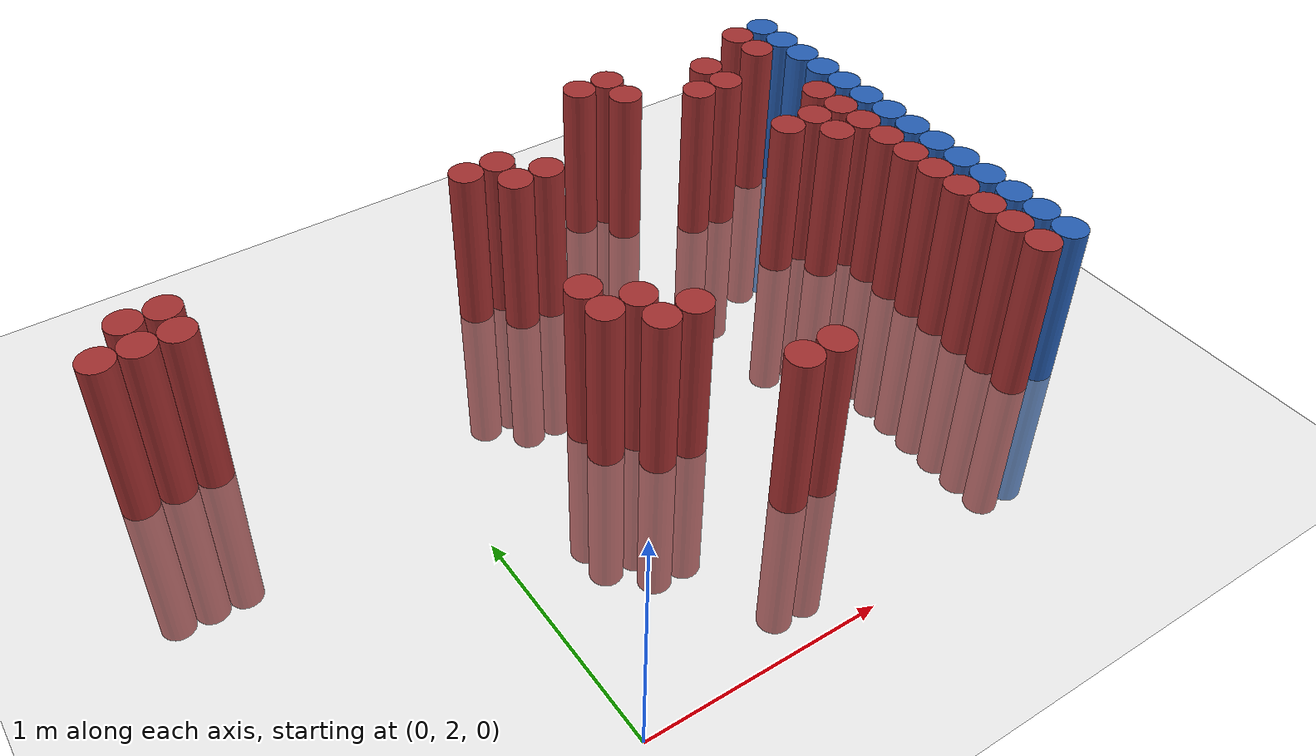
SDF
<sdf version="1.6">
 <world name="default">
  <model name="ground_plane">
   <static>1</static>
   <link name="link">
    <collision name="collision">
     <geometry><plane><normal>0 0 1</normal><size>100 100</size></plane></geometry>
     <surface><friction><ode><mu>100</mu><mu2>50</mu2></ode></friction></surface>
    </collision>
    <visual name="visual">
     <cast_shadows>0</cast_shadows>
     <geometry><plane><normal>0 0 1</normal><size>100 100</size></plane></geometry>
     <material>
      <script><uri>file://media/materials/scripts/gazebo.material</uri><name>Gazebo/Grey</name></script>
     </material>
    </visual>
   </link>
  </model>
  <model name="unit_cylinder_150">
   <static>1</static>
   <pose>-1.025000 3.925000 0.000000 0.000000 0.000000 0.000000</pose>
   <link name="link">
    <inertial>
     <mass>1</mass>
     <inertia><ixx>0.145833</ixx><ixy>0</ixy><ixz>0</ixz><iyy>0.145833</iyy><iyz>0</iyz><izz>0.125</izz></inertia>
    </inertial>
    <collision name="collision">
     <geometry><cylinder><radius>0.075000</radius><length>1.5</length></cylinder></geometry>
    </collision>
    <visual name="visual">
     <geometry><cylinder><radius>0.075000</radius><length>1.5</length></cylinder></geometry>
     <material>
      <ambient>0.648000 0.192000 0.192000 1</ambient>
      <diffuse>0.648000 0.192000 0.192000 1</diffuse>
     </material>
     <material>
      <script><name>Gazebo/Grey</name><uri>file://media/materials/scripts/gazebo.material</uri></script>
     </material>
    </visual>
   </link>
  </model>
  <model name="unit_cylinder_151">
   <static>1</static>
   <pose>-0.875000 3.925000 0.000000 0.000000 0.000000 0.000000</pose>
   <link name="link">
    <inertial>
     <mass>1</mass>
     <inertia><ixx>0.145833</ixx><ixy>0</ixy><ixz>0</ixz><iyy>0.145833</iyy><iyz>0</iyz><izz>0.125</izz></inertia>
    </inertial>
    <collision name="collision">
     <geometry><cylinder><radius>0.075000</radius><length>1.5</length></cylinder></geometry>
    </collision>
    <visual name="visual">
     <geometry><cylinder><radius>0.075000</radius><length>1.5</length></cylinder></geometry>
     <material>
      <ambient>0.648000 0.192000 0.192000 1</ambient>
      <diffuse>0.648000 0.192000 0.192000 1</diffuse>
     </material>
     <material>
      <script><name>Gazebo/Grey</name><uri>file://media/materials/scripts/gazebo.material</uri></script>
     </material>
    </visual>
   </link>
  </model>
  <model name="unit_cylinder_152">
   <static>1</static>
   <pose>-0.875000 4.075000 0.000000 0.000000 0.000000 0.000000</pose>
   <link name="link">
    <inertial>
     <mass>1</mass>
     <inertia><ixx>0.145833</ixx><ixy>0</ixy><ixz>0</ixz><iyy>0.145833</iyy><iyz>0</iyz><izz>0.125</izz></inertia>
    </inertial>
    <collision name="collision">
     <geometry><cylinder><radius>0.075000</radius><length>1.5</length></cylinder></geometry>
    </collision>
    <visual name="visual">
     <geometry><cylinder><radius>0.075000</radius><length>1.5</length></cylinder></geometry>
     <material>
      <ambient>0.648000 0.192000 0.192000 1</ambient>
      <diffuse>0.648000 0.192000 0.192000 1</diffuse>
     </material>
     <material>
      <script><name>Gazebo/Grey</name><uri>file://media/materials/scripts/gazebo.material</uri></script>
     </material>
    </visual>
   </link>
  </model>
  <model name="unit_cylinder_156">
   <static>1</static>
   <pose>-0.725000 3.925000 0.000000 0.000000 0.000000 0.000000</pose>
   <link name="link">
    <inertial>
     <mass>1</mass>
     <inertia><ixx>0.145833</ixx><ixy>0</ixy><ixz>0</ixz><iyy>0.145833</iyy><iyz>0</iyz><izz>0.125</izz></inertia>
    </inertial>
    <collision name="collision">
     <geometry><cylinder><radius>0.075000</radius><length>1.5</length></cylinder></geometry>
    </collision>
    <visual name="visual">
     <geometry><cylinder><radius>0.075000</radius><length>1.5</length></cylinder></geometry>
     <material>
      <ambient>0.648000 0.192000 0.192000 1</ambient>
      <diffuse>0.648000 0.192000 0.192000 1</diffuse>
     </material>
     <material>
      <script><name>Gazebo/Grey</name><uri>file://media/materials/scripts/gazebo.material</uri></script>
     </material>
    </visual>
   </link>
  </model>
  <model name="unit_cylinder_157">
   <static>1</static>
   <pose>-0.725000 4.075000 0.000000 0.000000 0.000000 0.000000</pose>
   <link name="link">
    <inertial>
     <mass>1</mass>
     <inertia><ixx>0.145833</ixx><ixy>0</ixy><ixz>0</ixz><iyy>0.145833</iyy><iyz>0</iyz><izz>0.125</izz></inertia>
    </inertial>
    <collision name="collision">
     <geometry><cylinder><radius>0.075000</radius><length>1.5</length></cylinder></geometry>
    </collision>
    <visual name="visual">
     <geometry><cylinder><radius>0.075000</radius><length>1.5</length></cylinder></geometry>
     <material>
      <ambient>0.648000 0.192000 0.192000 1</ambient>
      <diffuse>0.648000 0.192000 0.192000 1</diffuse>
     </material>
     <material>
      <script><name>Gazebo/Grey</name><uri>file://media/materials/scripts/gazebo.material</uri></script>
     </material>
    </visual>
   </link>
  </model>
  <model name="unit_cylinder_174">
   <static>1</static>
   <pose>0.625000 3.175000 0.000000 0.000000 0.000000 0.000000</pose>
   <link name="link">
    <inertial>
     <mass>1</mass>
     <inertia><ixx>0.145833</ixx><ixy>0</ixy><ixz>0</ixz><iyy>0.145833</iyy><iyz>0</iyz><izz>0.125</izz></inertia>
    </inertial>
    <collision name="collision">
     <geometry><cylinder><radius>0.075000</radius><length>1.5</length></cylinder></geometry>
    </collision>
    <visual name="visual">
     <geometry><cylinder><radius>0.075000</radius><length>1.5</length></cylinder></geometry>
     <material>
      <ambient>0.648000 0.192000 0.192000 1</ambient>
      <diffuse>0.648000 0.192000 0.192000 1</diffuse>
     </material>
     <material>
      <script><name>Gazebo/Grey</name><uri>file://media/materials/scripts/gazebo.material</uri></script>
     </material>
    </visual>
   </link>
  </model>
  <model name="unit_cylinder_175">
   <static>1</static>
   <pose>0.625000 3.325000 0.000000 0.000000 0.000000 0.000000</pose>
   <link name="link">
    <inertial>
     <mass>1</mass>
     <inertia><ixx>0.145833</ixx><ixy>0</ixy><ixz>0</ixz><iyy>0.145833</iyy><iyz>0</iyz><izz>0.125</izz></inertia>
    </inertial>
    <collision name="collision">
     <geometry><cylinder><radius>0.075000</radius><length>1.5</length></cylinder></geometry>
    </collision>
    <visual name="visual">
     <geometry><cylinder><radius>0.075000</radius><length>1.5</length></cylinder></geometry>
     <material>
      <ambient>0.648000 0.192000 0.192000 1</ambient>
      <diffuse>0.648000 0.192000 0.192000 1</diffuse>
     </material>
     <material>
      <script><name>Gazebo/Grey</name><uri>file://media/materials/scripts/gazebo.material</uri></script>
     </material>
    </visual>
   </link>
  </model>
  <model name="unit_cylinder_176">
   <static>1</static>
   <pose>0.625000 4.225000 0.000000 0.000000 0.000000 0.000000</pose>
   <link name="link">
    <inertial>
     <mass>1</mass>
     <inertia><ixx>0.145833</ixx><ixy>0</ixy><ixz>0</ixz><iyy>0.145833</iyy><iyz>0</iyz><izz>0.125</izz></inertia>
    </inertial>
    <collision name="collision">
     <geometry><cylinder><radius>0.075000</radius><length>1.5</length></cylinder></geometry>
    </collision>
    <visual name="visual">
     <geometry><cylinder><radius>0.075000</radius><length>1.5</length></cylinder></geometry>
     <material>
      <ambient>0.648000 0.192000 0.192000 1</ambient>
      <diffuse>0.648000 0.192000 0.192000 1</diffuse>
     </material>
     <material>
      <script><name>Gazebo/Grey</name><uri>file://media/materials/scripts/gazebo.material</uri></script>
     </material>
    </visual>
   </link>
  </model>
  <model name="unit_cylinder_177">
   <static>1</static>
   <pose>0.775000 3.025000 0.000000 0.000000 0.000000 0.000000</pose>
   <link name="link">
    <inertial>
     <mass>1</mass>
     <inertia><ixx>0.145833</ixx><ixy>0</ixy><ixz>0</ixz><iyy>0.145833</iyy><iyz>0</iyz><izz>0.125</izz></inertia>
    </inertial>
    <collision name="collision">
     <geometry><cylinder><radius>0.075000</radius><length>1.5</length></cylinder></geometry>
    </collision>
    <visual name="visual">
     <geometry><cylinder><radius>0.075000</radius><length>1.5</length></cylinder></geometry>
     <material>
      <ambient>0.648000 0.192000 0.192000 1</ambient>
      <diffuse>0.648000 0.192000 0.192000 1</diffuse>
     </material>
     <material>
      <script><name>Gazebo/Grey</name><uri>file://media/materials/scripts/gazebo.material</uri></script>
     </material>
    </visual>
   </link>
  </model>
  <model name="unit_cylinder_178">
   <static>1</static>
   <pose>0.775000 3.175000 0.000000 0.000000 0.000000 0.000000</pose>
   <link name="link">
    <inertial>
     <mass>1</mass>
     <inertia><ixx>0.145833</ixx><ixy>0</ixy><ixz>0</ixz><iyy>0.145833</iyy><iyz>0</iyz><izz>0.125</izz></inertia>
    </inertial>
    <collision name="collision">
     <geometry><cylinder><radius>0.075000</radius><length>1.5</length></cylinder></geometry>
    </collision>
    <visual name="visual">
     <geometry><cylinder><radius>0.075000</radius><length>1.5</length></cylinder></geometry>
     <material>
      <ambient>0.648000 0.192000 0.192000 1</ambient>
      <diffuse>0.648000 0.192000 0.192000 1</diffuse>
     </material>
     <material>
      <script><name>Gazebo/Grey</name><uri>file://media/materials/scripts/gazebo.material</uri></script>
     </material>
    </visual>
   </link>
  </model>
  <model name="unit_cylinder_179">
   <static>1</static>
   <pose>0.775000 4.075000 0.000000 0.000000 0.000000 0.000000</pose>
   <link name="link">
    <inertial>
     <mass>1</mass>
     <inertia><ixx>0.145833</ixx><ixy>0</ixy><ixz>0</ixz><iyy>0.145833</iyy><iyz>0</iyz><izz>0.125</izz></inertia>
    </inertial>
    <collision name="collision">
     <geometry><cylinder><radius>0.075000</radius><length>1.5</length></cylinder></geometry>
    </collision>
    <visual name="visual">
     <geometry><cylinder><radius>0.075000</radius><length>1.5</length></cylinder></geometry>
     <material>
      <ambient>0.648000 0.192000 0.192000 1</ambient>
      <diffuse>0.648000 0.192000 0.192000 1</diffuse>
     </material>
     <material>
      <script><name>Gazebo/Grey</name><uri>file://media/materials/scripts/gazebo.material</uri></script>
     </material>
    </visual>
   </link>
  </model>
  <model name="unit_cylinder_180">
   <static>1</static>
   <pose>0.775000 4.225000 0.000000 0.000000 0.000000 0.000000</pose>
   <link name="link">
    <inertial>
     <mass>1</mass>
     <inertia><ixx>0.145833</ixx><ixy>0</ixy><ixz>0</ixz><iyy>0.145833</iyy><iyz>0</iyz><izz>0.125</izz></inertia>
    </inertial>
    <collision name="collision">
     <geometry><cylinder><radius>0.075000</radius><length>1.5</length></cylinder></geometry>
    </collision>
    <visual name="visual">
     <geometry><cylinder><radius>0.075000</radius><length>1.5</length></cylinder></geometry>
     <material>
      <ambient>0.648000 0.192000 0.192000 1</ambient>
      <diffuse>0.648000 0.192000 0.192000 1</diffuse>
     </material>
     <material>
      <script><name>Gazebo/Grey</name><uri>file://media/materials/scripts/gazebo.material</uri></script>
     </material>
    </visual>
   </link>
  </model>
  <model name="unit_cylinder_181">
   <static>1</static>
   <pose>0.925000 3.025000 0.000000 0.000000 0.000000 0.000000</pose>
   <link name="link">
    <inertial>
     <mass>1</mass>
     <inertia><ixx>0.145833</ixx><ixy>0</ixy><ixz>0</ixz><iyy>0.145833</iyy><iyz>0</iyz><izz>0.125</izz></inertia>
    </inertial>
    <collision name="collision">
     <geometry><cylinder><radius>0.075000</radius><length>1.5</length></cylinder></geometry>
    </collision>
    <visual name="visual">
     <geometry><cylinder><radius>0.075000</radius><length>1.5</length></cylinder></geometry>
     <material>
      <ambient>0.648000 0.192000 0.192000 1</ambient>
      <diffuse>0.648000 0.192000 0.192000 1</diffuse>
     </material>
     <material>
      <script><name>Gazebo/Grey</name><uri>file://media/materials/scripts/gazebo.material</uri></script>
     </material>
    </visual>
   </link>
  </model>
  <model name="unit_cylinder_182">
   <static>1</static>
   <pose>0.925000 4.075000 0.000000 0.000000 0.000000 0.000000</pose>
   <link name="link">
    <inertial>
     <mass>1</mass>
     <inertia><ixx>0.145833</ixx><ixy>0</ixy><ixz>0</ixz><iyy>0.145833</iyy><iyz>0</iyz><izz>0.125</izz></inertia>
    </inertial>
    <collision name="collision">
     <geometry><cylinder><radius>0.075000</radius><length>1.5</length></cylinder></geometry>
    </collision>
    <visual name="visual">
     <geometry><cylinder><radius>0.075000</radius><length>1.5</length></cylinder></geometry>
     <material>
      <ambient>0.648000 0.192000 0.192000 1</ambient>
      <diffuse>0.648000 0.192000 0.192000 1</diffuse>
     </material>
     <material>
      <script><name>Gazebo/Grey</name><uri>file://media/materials/scripts/gazebo.material</uri></script>
     </material>
    </visual>
   </link>
  </model>
  <model name="unit_cylinder_183">
   <static>1</static>
   <pose>1.075000 2.575000 0.000000 0.000000 0.000000 0.000000</pose>
   <link name="link">
    <inertial>
     <mass>1</mass>
     <inertia><ixx>0.145833</ixx><ixy>0</ixy><ixz>0</ixz><iyy>0.145833</iyy><iyz>0</iyz><izz>0.125</izz></inertia>
    </inertial>
    <collision name="collision">
     <geometry><cylinder><radius>0.075000</radius><length>1.5</length></cylinder></geometry>
    </collision>
    <visual name="visual">
     <geometry><cylinder><radius>0.075000</radius><length>1.5</length></cylinder></geometry>
     <material>
      <ambient>0.648000 0.192000 0.192000 1</ambient>
      <diffuse>0.648000 0.192000 0.192000 1</diffuse>
     </material>
     <material>
      <script><name>Gazebo/Grey</name><uri>file://media/materials/scripts/gazebo.material</uri></script>
     </material>
    </visual>
   </link>
  </model>
  <model name="unit_cylinder_185">
   <static>1</static>
   <pose>1.225000 2.575000 0.000000 0.000000 0.000000 0.000000</pose>
   <link name="link">
    <inertial>
     <mass>1</mass>
     <inertia><ixx>0.145833</ixx><ixy>0</ixy><ixz>0</ixz><iyy>0.145833</iyy><iyz>0</iyz><izz>0.125</izz></inertia>
    </inertial>
    <collision name="collision">
     <geometry><cylinder><radius>0.075000</radius><length>1.5</length></cylinder></geometry>
    </collision>
    <visual name="visual">
     <geometry><cylinder><radius>0.075000</radius><length>1.5</length></cylinder></geometry>
     <material>
      <ambient>0.648000 0.192000 0.192000 1</ambient>
      <diffuse>0.648000 0.192000 0.192000 1</diffuse>
     </material>
     <material>
      <script><name>Gazebo/Grey</name><uri>file://media/materials/scripts/gazebo.material</uri></script>
     </material>
    </visual>
   </link>
  </model>
  <model name="unit_cylinder_190">
   <static>1</static>
   <pose>1.375000 4.525000 0.000000 0.000000 0.000000 0.000000</pose>
   <link name="link">
    <inertial>
     <mass>1</mass>
     <inertia><ixx>0.145833</ixx><ixy>0</ixy><ixz>0</ixz><iyy>0.145833</iyy><iyz>0</iyz><izz>0.125</izz></inertia>
    </inertial>
    <collision name="collision">
     <geometry><cylinder><radius>0.075000</radius><length>1.5</length></cylinder></geometry>
    </collision>
    <visual name="visual">
     <geometry><cylinder><radius>0.075000</radius><length>1.5</length></cylinder></geometry>
     <material>
      <ambient>0.648000 0.192000 0.192000 1</ambient>
      <diffuse>0.648000 0.192000 0.192000 1</diffuse>
     </material>
     <material>
      <script><name>Gazebo/Grey</name><uri>file://media/materials/scripts/gazebo.material</uri></script>
     </material>
    </visual>
   </link>
  </model>
  <model name="unit_cylinder_193">
   <static>1</static>
   <pose>1.525000 4.375000 0.000000 0.000000 0.000000 0.000000</pose>
   <link name="link">
    <inertial>
     <mass>1</mass>
     <inertia><ixx>0.145833</ixx><ixy>0</ixy><ixz>0</ixz><iyy>0.145833</iyy><iyz>0</iyz><izz>0.125</izz></inertia>
    </inertial>
    <collision name="collision">
     <geometry><cylinder><radius>0.075000</radius><length>1.5</length></cylinder></geometry>
    </collision>
    <visual name="visual">
     <geometry><cylinder><radius>0.075000</radius><length>1.5</length></cylinder></geometry>
     <material>
      <ambient>0.648000 0.192000 0.192000 1</ambient>
      <diffuse>0.648000 0.192000 0.192000 1</diffuse>
     </material>
     <material>
      <script><name>Gazebo/Grey</name><uri>file://media/materials/scripts/gazebo.material</uri></script>
     </material>
    </visual>
   </link>
  </model>
  <model name="unit_cylinder_194">
   <static>1</static>
   <pose>1.525000 4.525000 0.000000 0.000000 0.000000 0.000000</pose>
   <link name="link">
    <inertial>
     <mass>1</mass>
     <inertia><ixx>0.145833</ixx><ixy>0</ixy><ixz>0</ixz><iyy>0.145833</iyy><iyz>0</iyz><izz>0.125</izz></inertia>
    </inertial>
    <collision name="collision">
     <geometry><cylinder><radius>0.075000</radius><length>1.5</length></cylinder></geometry>
    </collision>
    <visual name="visual">
     <geometry><cylinder><radius>0.075000</radius><length>1.5</length></cylinder></geometry>
     <material>
      <ambient>0.648000 0.192000 0.192000 1</ambient>
      <diffuse>0.648000 0.192000 0.192000 1</diffuse>
     </material>
     <material>
      <script><name>Gazebo/Grey</name><uri>file://media/materials/scripts/gazebo.material</uri></script>
     </material>
    </visual>
   </link>
  </model>
  <model name="unit_cylinder_200">
   <static>1</static>
   <pose>1.825000 4.225000 0.000000 0.000000 0.000000 0.000000</pose>
   <link name="link">
    <inertial>
     <mass>1</mass>
     <inertia><ixx>0.145833</ixx><ixy>0</ixy><ixz>0</ixz><iyy>0.145833</iyy><iyz>0</iyz><izz>0.125</izz></inertia>
    </inertial>
    <collision name="collision">
     <geometry><cylinder><radius>0.075000</radius><length>1.5</length></cylinder></geometry>
    </collision>
    <visual name="visual">
     <geometry><cylinder><radius>0.075000</radius><length>1.5</length></cylinder></geometry>
     <material>
      <ambient>0.648000 0.192000 0.192000 1</ambient>
      <diffuse>0.648000 0.192000 0.192000 1</diffuse>
     </material>
     <material>
      <script><name>Gazebo/Grey</name><uri>file://media/materials/scripts/gazebo.material</uri></script>
     </material>
    </visual>
   </link>
  </model>
  <model name="unit_cylinder_202">
   <static>1</static>
   <pose>1.975000 3.775000 0.000000 0.000000 0.000000 0.000000</pose>
   <link name="link">
    <inertial>
     <mass>1</mass>
     <inertia><ixx>0.145833</ixx><ixy>0</ixy><ixz>0</ixz><iyy>0.145833</iyy><iyz>0</iyz><izz>0.125</izz></inertia>
    </inertial>
    <collision name="collision">
     <geometry><cylinder><radius>0.075000</radius><length>1.5</length></cylinder></geometry>
    </collision>
    <visual name="visual">
     <geometry><cylinder><radius>0.075000</radius><length>1.5</length></cylinder></geometry>
     <material>
      <ambient>0.648000 0.192000 0.192000 1</ambient>
      <diffuse>0.648000 0.192000 0.192000 1</diffuse>
     </material>
     <material>
      <script><name>Gazebo/Grey</name><uri>file://media/materials/scripts/gazebo.material</uri></script>
     </material>
    </visual>
   </link>
  </model>
  <model name="unit_cylinder_203">
   <static>1</static>
   <pose>1.975000 4.225000 0.000000 0.000000 0.000000 0.000000</pose>
   <link name="link">
    <inertial>
     <mass>1</mass>
     <inertia><ixx>0.145833</ixx><ixy>0</ixy><ixz>0</ixz><iyy>0.145833</iyy><iyz>0</iyz><izz>0.125</izz></inertia>
    </inertial>
    <collision name="collision">
     <geometry><cylinder><radius>0.075000</radius><length>1.5</length></cylinder></geometry>
    </collision>
    <visual name="visual">
     <geometry><cylinder><radius>0.075000</radius><length>1.5</length></cylinder></geometry>
     <material>
      <ambient>0.648000 0.192000 0.192000 1</ambient>
      <diffuse>0.648000 0.192000 0.192000 1</diffuse>
     </material>
     <material>
      <script><name>Gazebo/Grey</name><uri>file://media/materials/scripts/gazebo.material</uri></script>
     </material>
    </visual>
   </link>
  </model>
  <model name="unit_cylinder_204">
   <static>1</static>
   <pose>1.975000 4.375000 0.000000 0.000000 0.000000 0.000000</pose>
   <link name="link">
    <inertial>
     <mass>1</mass>
     <inertia><ixx>0.145833</ixx><ixy>0</ixy><ixz>0</ixz><iyy>0.145833</iyy><iyz>0</iyz><izz>0.125</izz></inertia>
    </inertial>
    <collision name="collision">
     <geometry><cylinder><radius>0.075000</radius><length>1.5</length></cylinder></geometry>
    </collision>
    <visual name="visual">
     <geometry><cylinder><radius>0.075000</radius><length>1.5</length></cylinder></geometry>
     <material>
      <ambient>0.648000 0.192000 0.192000 1</ambient>
      <diffuse>0.648000 0.192000 0.192000 1</diffuse>
     </material>
     <material>
      <script><name>Gazebo/Grey</name><uri>file://media/materials/scripts/gazebo.material</uri></script>
     </material>
    </visual>
   </link>
  </model>
  <model name="unit_cylinder_205">
   <static>1</static>
   <pose>2.125000 3.625000 0.000000 0.000000 0.000000 0.000000</pose>
   <link name="link">
    <inertial>
     <mass>1</mass>
     <inertia><ixx>0.145833</ixx><ixy>0</ixy><ixz>0</ixz><iyy>0.145833</iyy><iyz>0</iyz><izz>0.125</izz></inertia>
    </inertial>
    <collision name="collision">
     <geometry><cylinder><radius>0.075000</radius><length>1.5</length></cylinder></geometry>
    </collision>
    <visual name="visual">
     <geometry><cylinder><radius>0.075000</radius><length>1.5</length></cylinder></geometry>
     <material>
      <ambient>0.648000 0.192000 0.192000 1</ambient>
      <diffuse>0.648000 0.192000 0.192000 1</diffuse>
     </material>
     <material>
      <script><name>Gazebo/Grey</name><uri>file://media/materials/scripts/gazebo.material</uri></script>
     </material>
    </visual>
   </link>
  </model>
  <model name="unit_cylinder_206">
   <static>1</static>
   <pose>2.125000 3.775000 0.000000 0.000000 0.000000 0.000000</pose>
   <link name="link">
    <inertial>
     <mass>1</mass>
     <inertia><ixx>0.145833</ixx><ixy>0</ixy><ixz>0</ixz><iyy>0.145833</iyy><iyz>0</iyz><izz>0.125</izz></inertia>
    </inertial>
    <collision name="collision">
     <geometry><cylinder><radius>0.075000</radius><length>1.5</length></cylinder></geometry>
    </collision>
    <visual name="visual">
     <geometry><cylinder><radius>0.075000</radius><length>1.5</length></cylinder></geometry>
     <material>
      <ambient>0.648000 0.192000 0.192000 1</ambient>
      <diffuse>0.648000 0.192000 0.192000 1</diffuse>
     </material>
     <material>
      <script><name>Gazebo/Grey</name><uri>file://media/materials/scripts/gazebo.material</uri></script>
     </material>
    </visual>
   </link>
  </model>
  <model name="unit_cylinder_213">
   <static>1</static>
   <pose>2.275000 2.575000 0.000000 0.000000 0.000000 0.000000</pose>
   <link name="link">
    <inertial>
     <mass>1</mass>
     <inertia><ixx>0.145833</ixx><ixy>0</ixy><ixz>0</ixz><iyy>0.145833</iyy><iyz>0</iyz><izz>0.125</izz></inertia>
    </inertial>
    <collision name="collision">
     <geometry><cylinder><radius>0.075000</radius><length>1.5</length></cylinder></geometry>
    </collision>
    <visual name="visual">
     <geometry><cylinder><radius>0.075000</radius><length>1.5</length></cylinder></geometry>
     <material>
      <ambient>0.648000 0.192000 0.192000 1</ambient>
      <diffuse>0.648000 0.192000 0.192000 1</diffuse>
     </material>
     <material>
      <script><name>Gazebo/Grey</name><uri>file://media/materials/scripts/gazebo.material</uri></script>
     </material>
    </visual>
   </link>
  </model>
  <model name="unit_cylinder_214">
   <static>1</static>
   <pose>2.275000 2.725000 0.000000 0.000000 0.000000 0.000000</pose>
   <link name="link">
    <inertial>
     <mass>1</mass>
     <inertia><ixx>0.145833</ixx><ixy>0</ixy><ixz>0</ixz><iyy>0.145833</iyy><iyz>0</iyz><izz>0.125</izz></inertia>
    </inertial>
    <collision name="collision">
     <geometry><cylinder><radius>0.075000</radius><length>1.5</length></cylinder></geometry>
    </collision>
    <visual name="visual">
     <geometry><cylinder><radius>0.075000</radius><length>1.5</length></cylinder></geometry>
     <material>
      <ambient>0.648000 0.192000 0.192000 1</ambient>
      <diffuse>0.648000 0.192000 0.192000 1</diffuse>
     </material>
     <material>
      <script><name>Gazebo/Grey</name><uri>file://media/materials/scripts/gazebo.material</uri></script>
     </material>
    </visual>
   </link>
  </model>
  <model name="unit_cylinder_215">
   <static>1</static>
   <pose>2.275000 2.875000 0.000000 0.000000 0.000000 0.000000</pose>
   <link name="link">
    <inertial>
     <mass>1</mass>
     <inertia><ixx>0.145833</ixx><ixy>0</ixy><ixz>0</ixz><iyy>0.145833</iyy><iyz>0</iyz><izz>0.125</izz></inertia>
    </inertial>
    <collision name="collision">
     <geometry><cylinder><radius>0.075000</radius><length>1.5</length></cylinder></geometry>
    </collision>
    <visual name="visual">
     <geometry><cylinder><radius>0.075000</radius><length>1.5</length></cylinder></geometry>
     <material>
      <ambient>0.648000 0.192000 0.192000 1</ambient>
      <diffuse>0.648000 0.192000 0.192000 1</diffuse>
     </material>
     <material>
      <script><name>Gazebo/Grey</name><uri>file://media/materials/scripts/gazebo.material</uri></script>
     </material>
    </visual>
   </link>
  </model>
  <model name="unit_cylinder_216">
   <static>1</static>
   <pose>2.275000 3.025000 0.000000 0.000000 0.000000 0.000000</pose>
   <link name="link">
    <inertial>
     <mass>1</mass>
     <inertia><ixx>0.145833</ixx><ixy>0</ixy><ixz>0</ixz><iyy>0.145833</iyy><iyz>0</iyz><izz>0.125</izz></inertia>
    </inertial>
    <collision name="collision">
     <geometry><cylinder><radius>0.075000</radius><length>1.5</length></cylinder></geometry>
    </collision>
    <visual name="visual">
     <geometry><cylinder><radius>0.075000</radius><length>1.5</length></cylinder></geometry>
     <material>
      <ambient>0.648000 0.192000 0.192000 1</ambient>
      <diffuse>0.648000 0.192000 0.192000 1</diffuse>
     </material>
     <material>
      <script><name>Gazebo/Grey</name><uri>file://media/materials/scripts/gazebo.material</uri></script>
     </material>
    </visual>
   </link>
  </model>
  <model name="unit_cylinder_217">
   <static>1</static>
   <pose>2.275000 3.175000 0.000000 0.000000 0.000000 0.000000</pose>
   <link name="link">
    <inertial>
     <mass>1</mass>
     <inertia><ixx>0.145833</ixx><ixy>0</ixy><ixz>0</ixz><iyy>0.145833</iyy><iyz>0</iyz><izz>0.125</izz></inertia>
    </inertial>
    <collision name="collision">
     <geometry><cylinder><radius>0.075000</radius><length>1.5</length></cylinder></geometry>
    </collision>
    <visual name="visual">
     <geometry><cylinder><radius>0.075000</radius><length>1.5</length></cylinder></geometry>
     <material>
      <ambient>0.648000 0.192000 0.192000 1</ambient>
      <diffuse>0.648000 0.192000 0.192000 1</diffuse>
     </material>
     <material>
      <script><name>Gazebo/Grey</name><uri>file://media/materials/scripts/gazebo.material</uri></script>
     </material>
    </visual>
   </link>
  </model>
  <model name="unit_cylinder_218">
   <static>1</static>
   <pose>2.275000 3.325000 0.000000 0.000000 0.000000 0.000000</pose>
   <link name="link">
    <inertial>
     <mass>1</mass>
     <inertia><ixx>0.145833</ixx><ixy>0</ixy><ixz>0</ixz><iyy>0.145833</iyy><iyz>0</iyz><izz>0.125</izz></inertia>
    </inertial>
    <collision name="collision">
     <geometry><cylinder><radius>0.075000</radius><length>1.5</length></cylinder></geometry>
    </collision>
    <visual name="visual">
     <geometry><cylinder><radius>0.075000</radius><length>1.5</length></cylinder></geometry>
     <material>
      <ambient>0.648000 0.192000 0.192000 1</ambient>
      <diffuse>0.648000 0.192000 0.192000 1</diffuse>
     </material>
     <material>
      <script><name>Gazebo/Grey</name><uri>file://media/materials/scripts/gazebo.material</uri></script>
     </material>
    </visual>
   </link>
  </model>
  <model name="unit_cylinder_219">
   <static>1</static>
   <pose>2.275000 3.475000 0.000000 0.000000 0.000000 0.000000</pose>
   <link name="link">
    <inertial>
     <mass>1</mass>
     <inertia><ixx>0.145833</ixx><ixy>0</ixy><ixz>0</ixz><iyy>0.145833</iyy><iyz>0</iyz><izz>0.125</izz></inertia>
    </inertial>
    <collision name="collision">
     <geometry><cylinder><radius>0.075000</radius><length>1.5</length></cylinder></geometry>
    </collision>
    <visual name="visual">
     <geometry><cylinder><radius>0.075000</radius><length>1.5</length></cylinder></geometry>
     <material>
      <ambient>0.648000 0.192000 0.192000 1</ambient>
      <diffuse>0.648000 0.192000 0.192000 1</diffuse>
     </material>
     <material>
      <script><name>Gazebo/Grey</name><uri>file://media/materials/scripts/gazebo.material</uri></script>
     </material>
    </visual>
   </link>
  </model>
  <model name="unit_cylinder_220">
   <static>1</static>
   <pose>2.275000 3.625000 0.000000 0.000000 0.000000 0.000000</pose>
   <link name="link">
    <inertial>
     <mass>1</mass>
     <inertia><ixx>0.145833</ixx><ixy>0</ixy><ixz>0</ixz><iyy>0.145833</iyy><iyz>0</iyz><izz>0.125</izz></inertia>
    </inertial>
    <collision name="collision">
     <geometry><cylinder><radius>0.075000</radius><length>1.5</length></cylinder></geometry>
    </collision>
    <visual name="visual">
     <geometry><cylinder><radius>0.075000</radius><length>1.5</length></cylinder></geometry>
     <material>
      <ambient>0.648000 0.192000 0.192000 1</ambient>
      <diffuse>0.648000 0.192000 0.192000 1</diffuse>
     </material>
     <material>
      <script><name>Gazebo/Grey</name><uri>file://media/materials/scripts/gazebo.material</uri></script>
     </material>
    </visual>
   </link>
  </model>
  <model name="unit_cylinder_221">
   <static>1</static>
   <pose>2.275000 3.775000 0.000000 0.000000 0.000000 0.000000</pose>
   <link name="link">
    <inertial>
     <mass>1</mass>
     <inertia><ixx>0.145833</ixx><ixy>0</ixy><ixz>0</ixz><iyy>0.145833</iyy><iyz>0</iyz><izz>0.125</izz></inertia>
    </inertial>
    <collision name="collision">
     <geometry><cylinder><radius>0.075000</radius><length>1.5</length></cylinder></geometry>
    </collision>
    <visual name="visual">
     <geometry><cylinder><radius>0.075000</radius><length>1.5</length></cylinder></geometry>
     <material>
      <ambient>0.648000 0.192000 0.192000 1</ambient>
      <diffuse>0.648000 0.192000 0.192000 1</diffuse>
     </material>
     <material>
      <script><name>Gazebo/Grey</name><uri>file://media/materials/scripts/gazebo.material</uri></script>
     </material>
    </visual>
   </link>
  </model>
  <model name="unit_cylinder_222">
   <static>1</static>
   <pose>2.275000 3.925000 0.000000 0.000000 0.000000 0.000000</pose>
   <link name="link">
    <inertial>
     <mass>1</mass>
     <inertia><ixx>0.145833</ixx><ixy>0</ixy><ixz>0</ixz><iyy>0.145833</iyy><iyz>0</iyz><izz>0.125</izz></inertia>
    </inertial>
    <collision name="collision">
     <geometry><cylinder><radius>0.075000</radius><length>1.5</length></cylinder></geometry>
    </collision>
    <visual name="visual">
     <geometry><cylinder><radius>0.075000</radius><length>1.5</length></cylinder></geometry>
     <material>
      <ambient>0.648000 0.192000 0.192000 1</ambient>
      <diffuse>0.648000 0.192000 0.192000 1</diffuse>
     </material>
     <material>
      <script><name>Gazebo/Grey</name><uri>file://media/materials/scripts/gazebo.material</uri></script>
     </material>
    </visual>
   </link>
  </model>
  <model name="unit_cylinder_223">
   <static>1</static>
   <pose>2.275000 4.375000 0.000000 0.000000 0.000000 0.000000</pose>
   <link name="link">
    <inertial>
     <mass>1</mass>
     <inertia><ixx>0.145833</ixx><ixy>0</ixy><ixz>0</ixz><iyy>0.145833</iyy><iyz>0</iyz><izz>0.125</izz></inertia>
    </inertial>
    <collision name="collision">
     <geometry><cylinder><radius>0.075000</radius><length>1.5</length></cylinder></geometry>
    </collision>
    <visual name="visual">
     <geometry><cylinder><radius>0.075000</radius><length>1.5</length></cylinder></geometry>
     <material>
      <ambient>0.648000 0.192000 0.192000 1</ambient>
      <diffuse>0.648000 0.192000 0.192000 1</diffuse>
     </material>
     <material>
      <script><name>Gazebo/Grey</name><uri>file://media/materials/scripts/gazebo.material</uri></script>
     </material>
    </visual>
   </link>
  </model>
  <model name="unit_cylinder_224">
   <static>1</static>
   <pose>2.275000 4.525000 0.000000 0.000000 0.000000 0.000000</pose>
   <link name="link">
    <inertial>
     <mass>1</mass>
     <inertia><ixx>0.145833</ixx><ixy>0</ixy><ixz>0</ixz><iyy>0.145833</iyy><iyz>0</iyz><izz>0.125</izz></inertia>
    </inertial>
    <collision name="collision">
     <geometry><cylinder><radius>0.075000</radius><length>1.5</length></cylinder></geometry>
    </collision>
    <visual name="visual">
     <geometry><cylinder><radius>0.075000</radius><length>1.5</length></cylinder></geometry>
     <material>
      <ambient>0.648000 0.192000 0.192000 1</ambient>
      <diffuse>0.648000 0.192000 0.192000 1</diffuse>
     </material>
     <material>
      <script><name>Gazebo/Grey</name><uri>file://media/materials/scripts/gazebo.material</uri></script>
     </material>
    </visual>
   </link>
  </model>
  <model name="unit_cylinder_241">
   <static>1</static>
   <pose>2.425000 2.575000 0.000000 0.000000 0.000000 0.000000</pose>
   <link name="link">
    <inertial>
     <mass>1</mass>
     <inertia><ixx>0.145833</ixx><ixy>0</ixy><ixz>0</ixz><iyy>0.145833</iyy><iyz>0</iyz><izz>0.125</izz></inertia>
    </inertial>
    <collision name="collision">
     <geometry><cylinder><radius>0.075000</radius><length>1.5</length></cylinder></geometry>
    </collision>
    <visual name="visual">
     <geometry><cylinder><radius>0.075000</radius><length>1.5</length></cylinder></geometry>
     <material>
      <ambient>0.152000 0.379000 0.720000 1</ambient>
      <diffuse>0.152000 0.379000 0.720000 1</diffuse>
     </material>
     <material>
      <script><name>Gazebo/Grey</name><uri>file://media/materials/scripts/gazebo.material</uri></script>
     </material>
    </visual>
   </link>
  </model>
  <model name="unit_cylinder_242">
   <static>1</static>
   <pose>2.425000 2.725000 0.000000 0.000000 0.000000 0.000000</pose>
   <link name="link">
    <inertial>
     <mass>1</mass>
     <inertia><ixx>0.145833</ixx><ixy>0</ixy><ixz>0</ixz><iyy>0.145833</iyy><iyz>0</iyz><izz>0.125</izz></inertia>
    </inertial>
    <collision name="collision">
     <geometry><cylinder><radius>0.075000</radius><length>1.5</length></cylinder></geometry>
    </collision>
    <visual name="visual">
     <geometry><cylinder><radius>0.075000</radius><length>1.5</length></cylinder></geometry>
     <material>
      <ambient>0.152000 0.379000 0.720000 1</ambient>
      <diffuse>0.152000 0.379000 0.720000 1</diffuse>
     </material>
     <material>
      <script><name>Gazebo/Grey</name><uri>file://media/materials/scripts/gazebo.material</uri></script>
     </material>
    </visual>
   </link>
  </model>
  <model name="unit_cylinder_243">
   <static>1</static>
   <pose>2.425000 2.875000 0.000000 0.000000 0.000000 0.000000</pose>
   <link name="link">
    <inertial>
     <mass>1</mass>
     <inertia><ixx>0.145833</ixx><ixy>0</ixy><ixz>0</ixz><iyy>0.145833</iyy><iyz>0</iyz><izz>0.125</izz></inertia>
    </inertial>
    <collision name="collision">
     <geometry><cylinder><radius>0.075000</radius><length>1.5</length></cylinder></geometry>
    </collision>
    <visual name="visual">
     <geometry><cylinder><radius>0.075000</radius><length>1.5</length></cylinder></geometry>
     <material>
      <ambient>0.152000 0.379000 0.720000 1</ambient>
      <diffuse>0.152000 0.379000 0.720000 1</diffuse>
     </material>
     <material>
      <script><name>Gazebo/Grey</name><uri>file://media/materials/scripts/gazebo.material</uri></script>
     </material>
    </visual>
   </link>
  </model>
  <model name="unit_cylinder_244">
   <static>1</static>
   <pose>2.425000 3.025000 0.000000 0.000000 0.000000 0.000000</pose>
   <link name="link">
    <inertial>
     <mass>1</mass>
     <inertia><ixx>0.145833</ixx><ixy>0</ixy><ixz>0</ixz><iyy>0.145833</iyy><iyz>0</iyz><izz>0.125</izz></inertia>
    </inertial>
    <collision name="collision">
     <geometry><cylinder><radius>0.075000</radius><length>1.5</length></cylinder></geometry>
    </collision>
    <visual name="visual">
     <geometry><cylinder><radius>0.075000</radius><length>1.5</length></cylinder></geometry>
     <material>
      <ambient>0.152000 0.379000 0.720000 1</ambient>
      <diffuse>0.152000 0.379000 0.720000 1</diffuse>
     </material>
     <material>
      <script><name>Gazebo/Grey</name><uri>file://media/materials/scripts/gazebo.material</uri></script>
     </material>
    </visual>
   </link>
  </model>
  <model name="unit_cylinder_245">
   <static>1</static>
   <pose>2.425000 3.175000 0.000000 0.000000 0.000000 0.000000</pose>
   <link name="link">
    <inertial>
     <mass>1</mass>
     <inertia><ixx>0.145833</ixx><ixy>0</ixy><ixz>0</ixz><iyy>0.145833</iyy><iyz>0</iyz><izz>0.125</izz></inertia>
    </inertial>
    <collision name="collision">
     <geometry><cylinder><radius>0.075000</radius><length>1.5</length></cylinder></geometry>
    </collision>
    <visual name="visual">
     <geometry><cylinder><radius>0.075000</radius><length>1.5</length></cylinder></geometry>
     <material>
      <ambient>0.152000 0.379000 0.720000 1</ambient>
      <diffuse>0.152000 0.379000 0.720000 1</diffuse>
     </material>
     <material>
      <script><name>Gazebo/Grey</name><uri>file://media/materials/scripts/gazebo.material</uri></script>
     </material>
    </visual>
   </link>
  </model>
  <model name="unit_cylinder_246">
   <static>1</static>
   <pose>2.425000 3.325000 0.000000 0.000000 0.000000 0.000000</pose>
   <link name="link">
    <inertial>
     <mass>1</mass>
     <inertia><ixx>0.145833</ixx><ixy>0</ixy><ixz>0</ixz><iyy>0.145833</iyy><iyz>0</iyz><izz>0.125</izz></inertia>
    </inertial>
    <collision name="collision">
     <geometry><cylinder><radius>0.075000</radius><length>1.5</length></cylinder></geometry>
    </collision>
    <visual name="visual">
     <geometry><cylinder><radius>0.075000</radius><length>1.5</length></cylinder></geometry>
     <material>
      <ambient>0.152000 0.379000 0.720000 1</ambient>
      <diffuse>0.152000 0.379000 0.720000 1</diffuse>
     </material>
     <material>
      <script><name>Gazebo/Grey</name><uri>file://media/materials/scripts/gazebo.material</uri></script>
     </material>
    </visual>
   </link>
  </model>
  <model name="unit_cylinder_247">
   <static>1</static>
   <pose>2.425000 3.475000 0.000000 0.000000 0.000000 0.000000</pose>
   <link name="link">
    <inertial>
     <mass>1</mass>
     <inertia><ixx>0.145833</ixx><ixy>0</ixy><ixz>0</ixz><iyy>0.145833</iyy><iyz>0</iyz><izz>0.125</izz></inertia>
    </inertial>
    <collision name="collision">
     <geometry><cylinder><radius>0.075000</radius><length>1.5</length></cylinder></geometry>
    </collision>
    <visual name="visual">
     <geometry><cylinder><radius>0.075000</radius><length>1.5</length></cylinder></geometry>
     <material>
      <ambient>0.152000 0.379000 0.720000 1</ambient>
      <diffuse>0.152000 0.379000 0.720000 1</diffuse>
     </material>
     <material>
      <script><name>Gazebo/Grey</name><uri>file://media/materials/scripts/gazebo.material</uri></script>
     </material>
    </visual>
   </link>
  </model>
  <model name="unit_cylinder_248">
   <static>1</static>
   <pose>2.425000 3.625000 0.000000 0.000000 0.000000 0.000000</pose>
   <link name="link">
    <inertial>
     <mass>1</mass>
     <inertia><ixx>0.145833</ixx><ixy>0</ixy><ixz>0</ixz><iyy>0.145833</iyy><iyz>0</iyz><izz>0.125</izz></inertia>
    </inertial>
    <collision name="collision">
     <geometry><cylinder><radius>0.075000</radius><length>1.5</length></cylinder></geometry>
    </collision>
    <visual name="visual">
     <geometry><cylinder><radius>0.075000</radius><length>1.5</length></cylinder></geometry>
     <material>
      <ambient>0.152000 0.379000 0.720000 1</ambient>
      <diffuse>0.152000 0.379000 0.720000 1</diffuse>
     </material>
     <material>
      <script><name>Gazebo/Grey</name><uri>file://media/materials/scripts/gazebo.material</uri></script>
     </material>
    </visual>
   </link>
  </model>
  <model name="unit_cylinder_249">
   <static>1</static>
   <pose>2.425000 3.775000 0.000000 0.000000 0.000000 0.000000</pose>
   <link name="link">
    <inertial>
     <mass>1</mass>
     <inertia><ixx>0.145833</ixx><ixy>0</ixy><ixz>0</ixz><iyy>0.145833</iyy><iyz>0</iyz><izz>0.125</izz></inertia>
    </inertial>
    <collision name="collision">
     <geometry><cylinder><radius>0.075000</radius><length>1.5</length></cylinder></geometry>
    </collision>
    <visual name="visual">
     <geometry><cylinder><radius>0.075000</radius><length>1.5</length></cylinder></geometry>
     <material>
      <ambient>0.152000 0.379000 0.720000 1</ambient>
      <diffuse>0.152000 0.379000 0.720000 1</diffuse>
     </material>
     <material>
      <script><name>Gazebo/Grey</name><uri>file://media/materials/scripts/gazebo.material</uri></script>
     </material>
    </visual>
   </link>
  </model>
  <model name="unit_cylinder_250">
   <static>1</static>
   <pose>2.425000 3.925000 0.000000 0.000000 0.000000 0.000000</pose>
   <link name="link">
    <inertial>
     <mass>1</mass>
     <inertia><ixx>0.145833</ixx><ixy>0</ixy><ixz>0</ixz><iyy>0.145833</iyy><iyz>0</iyz><izz>0.125</izz></inertia>
    </inertial>
    <collision name="collision">
     <geometry><cylinder><radius>0.075000</radius><length>1.5</length></cylinder></geometry>
    </collision>
    <visual name="visual">
     <geometry><cylinder><radius>0.075000</radius><length>1.5</length></cylinder></geometry>
     <material>
      <ambient>0.152000 0.379000 0.720000 1</ambient>
      <diffuse>0.152000 0.379000 0.720000 1</diffuse>
     </material>
     <material>
      <script><name>Gazebo/Grey</name><uri>file://media/materials/scripts/gazebo.material</uri></script>
     </material>
    </visual>
   </link>
  </model>
  <model name="unit_cylinder_251">
   <static>1</static>
   <pose>2.425000 4.075000 0.000000 0.000000 0.000000 0.000000</pose>
   <link name="link">
    <inertial>
     <mass>1</mass>
     <inertia><ixx>0.145833</ixx><ixy>0</ixy><ixz>0</ixz><iyy>0.145833</iyy><iyz>0</iyz><izz>0.125</izz></inertia>
    </inertial>
    <collision name="collision">
     <geometry><cylinder><radius>0.075000</radius><length>1.5</length></cylinder></geometry>
    </collision>
    <visual name="visual">
     <geometry><cylinder><radius>0.075000</radius><length>1.5</length></cylinder></geometry>
     <material>
      <ambient>0.152000 0.379000 0.720000 1</ambient>
      <diffuse>0.152000 0.379000 0.720000 1</diffuse>
     </material>
     <material>
      <script><name>Gazebo/Grey</name><uri>file://media/materials/scripts/gazebo.material</uri></script>
     </material>
    </visual>
   </link>
  </model>
  <model name="unit_cylinder_252">
   <static>1</static>
   <pose>2.425000 4.225000 0.000000 0.000000 0.000000 0.000000</pose>
   <link name="link">
    <inertial>
     <mass>1</mass>
     <inertia><ixx>0.145833</ixx><ixy>0</ixy><ixz>0</ixz><iyy>0.145833</iyy><iyz>0</iyz><izz>0.125</izz></inertia>
    </inertial>
    <collision name="collision">
     <geometry><cylinder><radius>0.075000</radius><length>1.5</length></cylinder></geometry>
    </collision>
    <visual name="visual">
     <geometry><cylinder><radius>0.075000</radius><length>1.5</length></cylinder></geometry>
     <material>
      <ambient>0.152000 0.379000 0.720000 1</ambient>
      <diffuse>0.152000 0.379000 0.720000 1</diffuse>
     </material>
     <material>
      <script><name>Gazebo/Grey</name><uri>file://media/materials/scripts/gazebo.material</uri></script>
     </material>
    </visual>
   </link>
  </model>
  <model name="unit_cylinder_253">
   <static>1</static>
   <pose>2.425000 4.375000 0.000000 0.000000 0.000000 0.000000</pose>
   <link name="link">
    <inertial>
     <mass>1</mass>
     <inertia><ixx>0.145833</ixx><ixy>0</ixy><ixz>0</ixz><iyy>0.145833</iyy><iyz>0</iyz><izz>0.125</izz></inertia>
    </inertial>
    <collision name="collision">
     <geometry><cylinder><radius>0.075000</radius><length>1.5</length></cylinder></geometry>
    </collision>
    <visual name="visual">
     <geometry><cylinder><radius>0.075000</radius><length>1.5</length></cylinder></geometry>
     <material>
      <ambient>0.152000 0.379000 0.720000 1</ambient>
      <diffuse>0.152000 0.379000 0.720000 1</diffuse>
     </material>
     <material>
      <script><name>Gazebo/Grey</name><uri>file://media/materials/scripts/gazebo.material</uri></script>
     </material>
    </visual>
   </link>
  </model>
  <model name="unit_cylinder_254">
   <static>1</static>
   <pose>2.425000 4.525000 0.000000 0.000000 0.000000 0.000000</pose>
   <link name="link">
    <inertial>
     <mass>1</mass>
     <inertia><ixx>0.145833</ixx><ixy>0</ixy><ixz>0</ixz><iyy>0.145833</iyy><iyz>0</iyz><izz>0.125</izz></inertia>
    </inertial>
    <collision name="collision">
     <geometry><cylinder><radius>0.075000</radius><length>1.5</length></cylinder></geometry>
    </collision>
    <visual name="visual">
     <geometry><cylinder><radius>0.075000</radius><length>1.5</length></cylinder></geometry>
     <material>
      <ambient>0.152000 0.379000 0.720000 1</ambient>
      <diffuse>0.152000 0.379000 0.720000 1</diffuse>
     </material>
     <material>
      <script><name>Gazebo/Grey</name><uri>file://media/materials/scripts/gazebo.material</uri></script>
     </material>
    </visual>
   </link>
  </model>
 </world>
</sdf>
